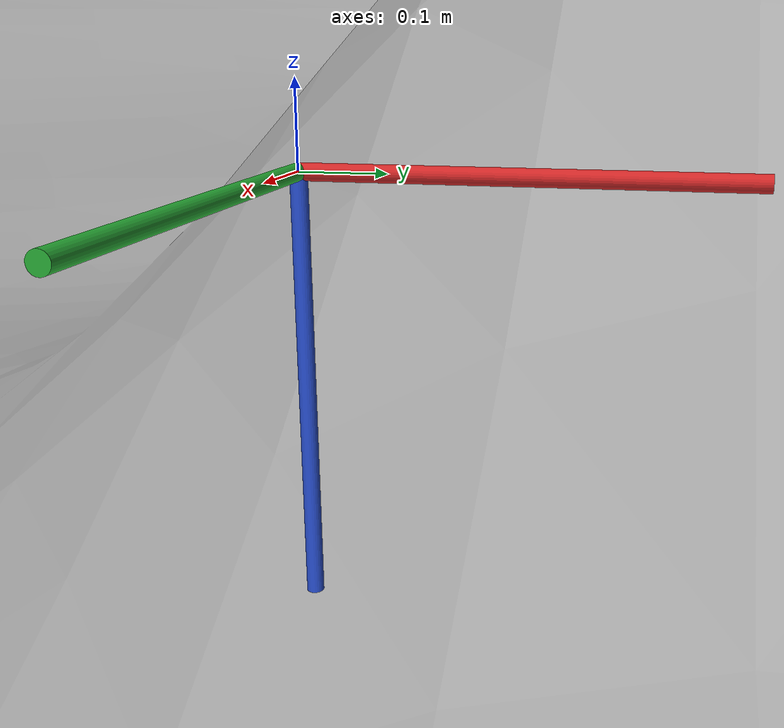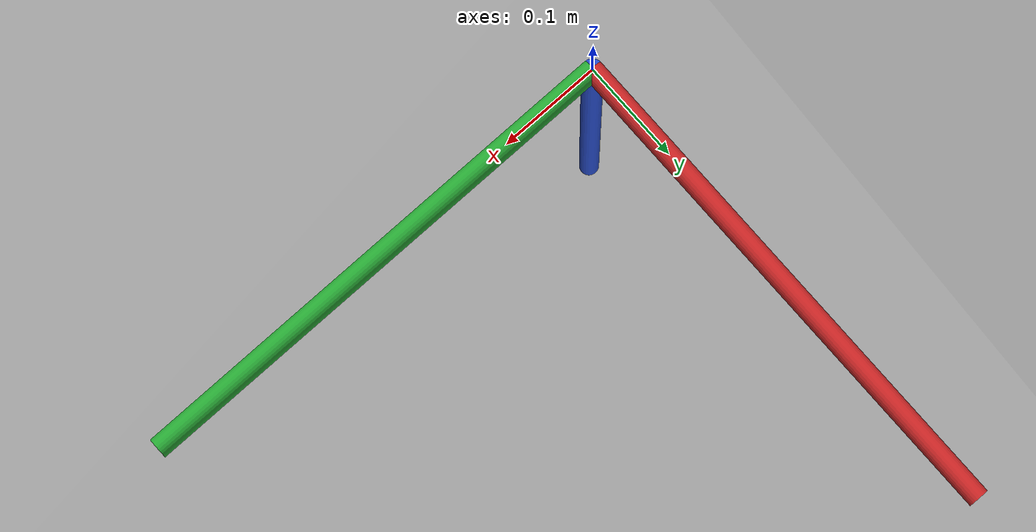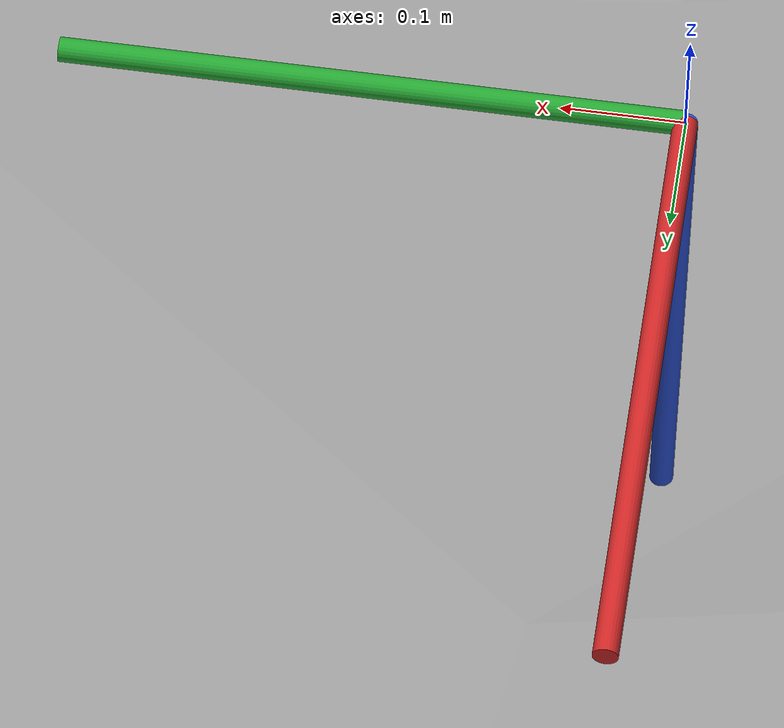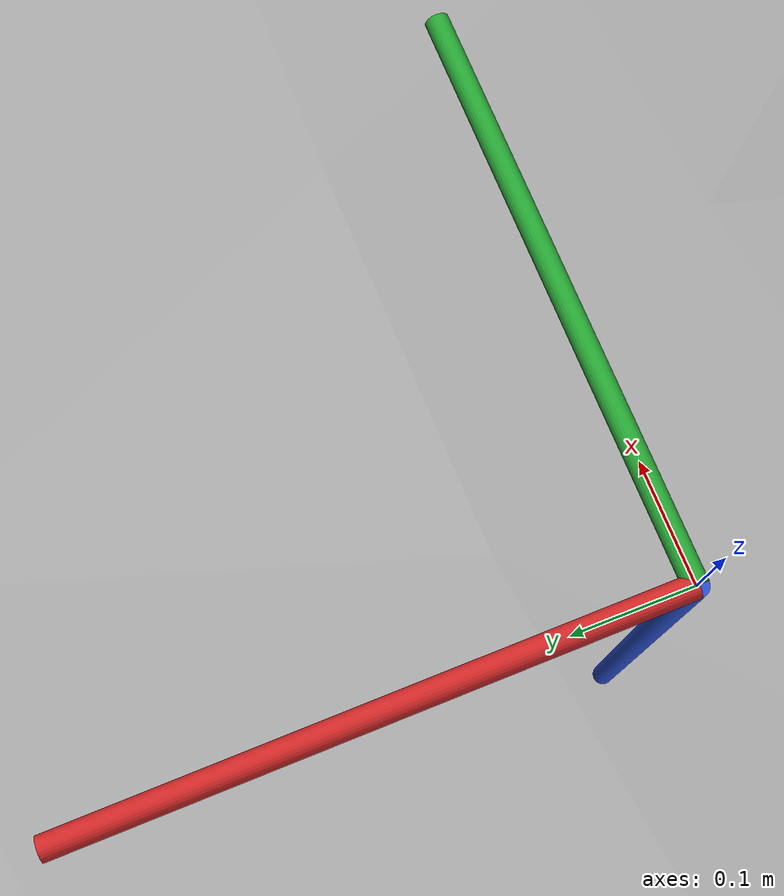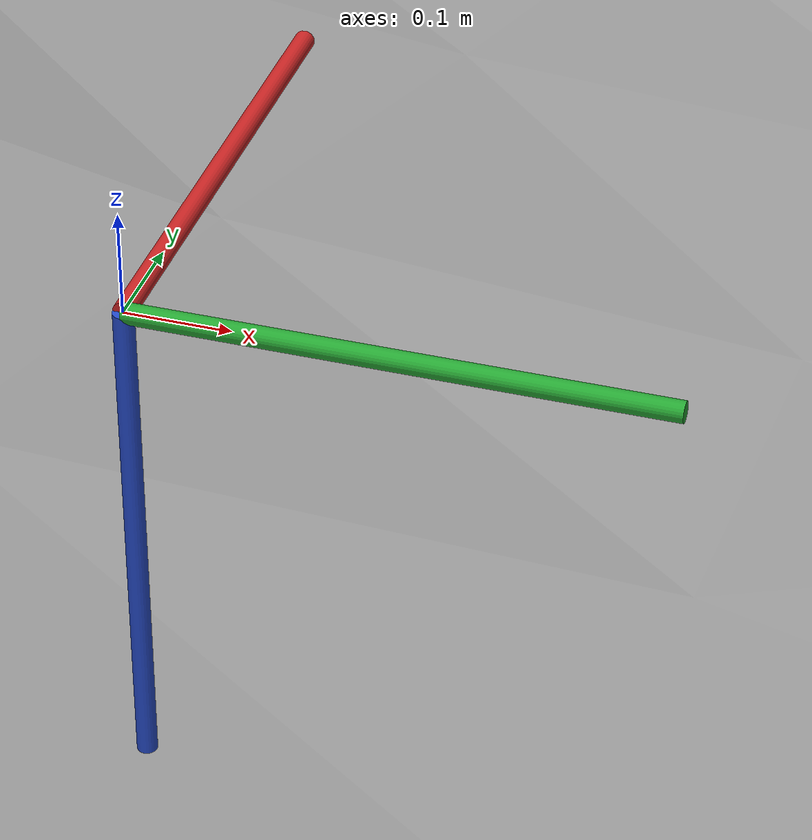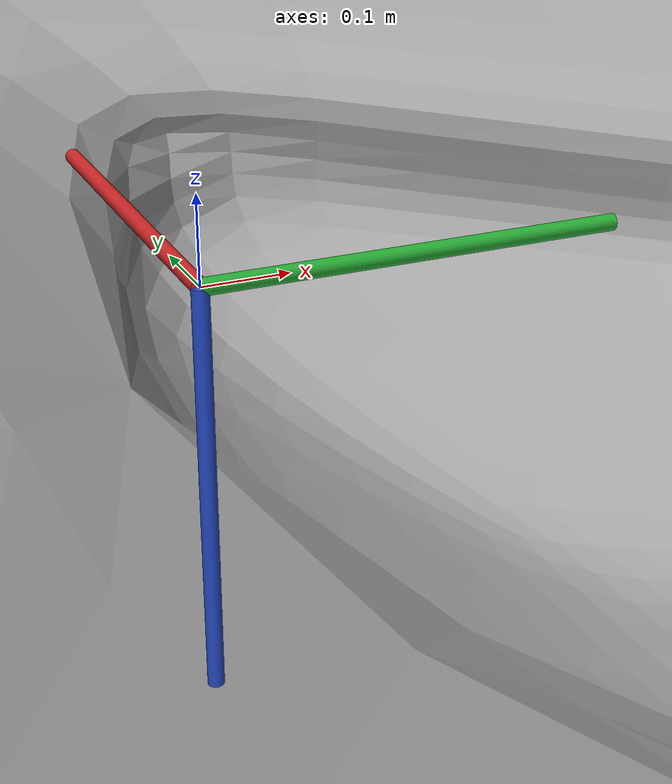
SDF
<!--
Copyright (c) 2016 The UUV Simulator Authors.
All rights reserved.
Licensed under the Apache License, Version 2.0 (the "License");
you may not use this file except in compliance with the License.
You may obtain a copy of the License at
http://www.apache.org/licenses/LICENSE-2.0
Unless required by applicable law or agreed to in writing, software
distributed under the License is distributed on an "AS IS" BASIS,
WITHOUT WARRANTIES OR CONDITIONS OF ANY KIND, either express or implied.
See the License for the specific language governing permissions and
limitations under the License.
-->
<?xml version="1.0" ?>
<sdf version="1.5">
  <world name="lake">
    <physics name="default_physics" default="true" type="ode">
      <max_step_size>0.002</max_step_size>
      <real_time_factor>1</real_time_factor>
      <real_time_update_rate>500</real_time_update_rate>
      <ode>
        <solver>
          <type>quick</type>
          <iters>50</iters>
          <sor>0.5</sor>
        </solver>
      </ode>
    </physics>
    <scene>
      <ambient>0.01 0.01 0.01 1.0</ambient>
      <sky>
        <clouds>
          <speed>12</speed>
        </clouds>
      </sky>
      <shadows>1</shadows>
    </scene>

    <!-- Origin placed somewhere in the middle of the Bodensee (Germany)  -->
    <spherical_coordinates>
      <latitude_deg>47.6278771</latitude_deg>
      <longitude_deg>9.334553</longitude_deg>
    </spherical_coordinates>

      <!-- Global light source -->
    <light type="directional" name="sun1">
      <pose>50 0 150 0 0 0</pose>
      <diffuse>1 1 1 1</diffuse>
      <specular>.1 .1 .1 1</specular>
      <direction>0.3 0.3 -1</direction>
      <cast_shadows>true</cast_shadows>
    </light>

    <!-- Global light source -->
    <include>
      <uri>model://sun</uri>
    </include>

    <!-- Virtual NED frame -->
    <include>
      <uri>model://ned_frame</uri>
      <pose>0 0 0 0 0 0</pose>
    </include>

    <!-- Bounding box with sea surface -->
    <include>
      <uri>model://lake</uri>
      <pose>0 0 0 0 0 0</pose>
    </include>

    <plugin name="underwater_current_plugin" filename="libuuv_underwater_current_ros_plugin.so">
      <namespace>hydrodynamics</namespace>
      <constant_current>
        <topic>current_velocity</topic>
        <velocity>
          <mean>0</mean>
          <min>0</min>
          <max>5</max>
          <mu>0.0</mu>
          <noiseAmp>0.0</noiseAmp>
        </velocity>

        <horizontal_angle>
          <mean>0</mean>
          <min>-3.141592653589793238</min>
          <max>3.141592653589793238</max>
          <mu>0.0</mu>
          <noiseAmp>0.0</noiseAmp>
        </horizontal_angle>

        <vertical_angle>
          <mean>0</mean>
          <min>-3.141592653589793238</min>
          <max>3.141592653589793238</max>
          <mu>0.0</mu>
          <noiseAmp>0.0</noiseAmp>
        </vertical_angle>
      </constant_current>
    </plugin>

    <plugin name="sc_interface" filename="libuuv_sc_ros_interface_plugin.so"/>

    <plugin name='gazebo_occupancy_map' filename='libgazebo_2Dmap_plugin.so'>
      <map_resolution>1</map_resolution> <!-- in meters, optional, default 0.1 -->
      <map_height>15</map_height>         <!-- in meters, optional, default 0.3 -->
      <map_size_x>1000</map_size_x>          <!-- in meters, optional, default 10 -->
      <map_size_y>1000</map_size_y>          <!-- in meters, optional, default 10 -->
      <init_robot_x>0</init_robot_x>          <!-- x coordinate in meters, optional, default 0 -->
      <init_robot_y>0</init_robot_y>          <!-- y coordinate in meters, optional, default 0 -->
    </plugin>

  </world>
</sdf>

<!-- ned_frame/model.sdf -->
<sdf version='1.5'>
    <model name="world_ned">

      <pose>0 0 0 0 0 0</pose>
      <static>true</static>

      <link name="world_ned">
        <gravity>0</gravity>
        <pose>0 0 0 3.14159265359 0 1.5707963267948966</pose>

        <visual name="N_visual">
          <pose>0.25 0 0 1.5707963267948966 0 1.5707963267948966</pose>
          <geometry>
            <cylinder>
              <radius>0.01</radius>
              <length>0.5</length>
            </cylinder>
          </geometry>
          <material>
            <script>
              <uri>file://media/materials/scripts/gazebo.material</uri>
              <name>Gazebo/Red</name>
            </script>
          </material>
        </visual>

        <visual name="E_visual">
          <pose>0 0.25 0 1.5707963267948966 0 0</pose>
          <geometry>
            <cylinder>
              <radius>0.01</radius>
              <length>0.5</length>
            </cylinder>
          </geometry>
          <material>
            <script>
              <uri>file://media/materials/scripts/gazebo.material</uri>
              <name>Gazebo/Green</name>
            </script>
          </material>
        </visual>

        <visual name="D_visual">
          <pose>0 0 0.25 0 0 0</pose>
          <geometry>
            <cylinder>
              <radius>0.01</radius>
              <length>0.5</length>
            </cylinder>
          </geometry>
          <material>
            <script>
              <uri>file://media/materials/scripts/gazebo.material</uri>
              <name>Gazebo/Blue</name>
            </script>
          </material>
        </visual>
      </link>
    </model>
</sdf>

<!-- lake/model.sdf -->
<sdf version="1.4">

<model name="lake">
    <static>true</static>
    <link name="lake_link">
        <visual name="lake_bottom">
            <cast_shadows>false</cast_shadows>
            <pose>0 0 0 0 0 0</pose>
            <geometry>
                <mesh><uri>model://lake/meshes/LakeBottom.dae</uri><scale>1 1 1</scale></mesh>
            </geometry>
            <material>
              <script>
                <uri>file://Media/materials/scripts/sand.material</uri>
                <name>UUVSimulator/SandAndStones</name>
              </script>
            </material>
        </visual>

        <collision name="lake_bottom">
            <pose>0 0 0 0 0 0</pose>
            <geometry>
                <mesh><uri>model://lake/meshes/LakeBottom.dae</uri><scale>1 1 1</scale></mesh>
            </geometry>
        </collision>

    </link>
</model>

</sdf>
